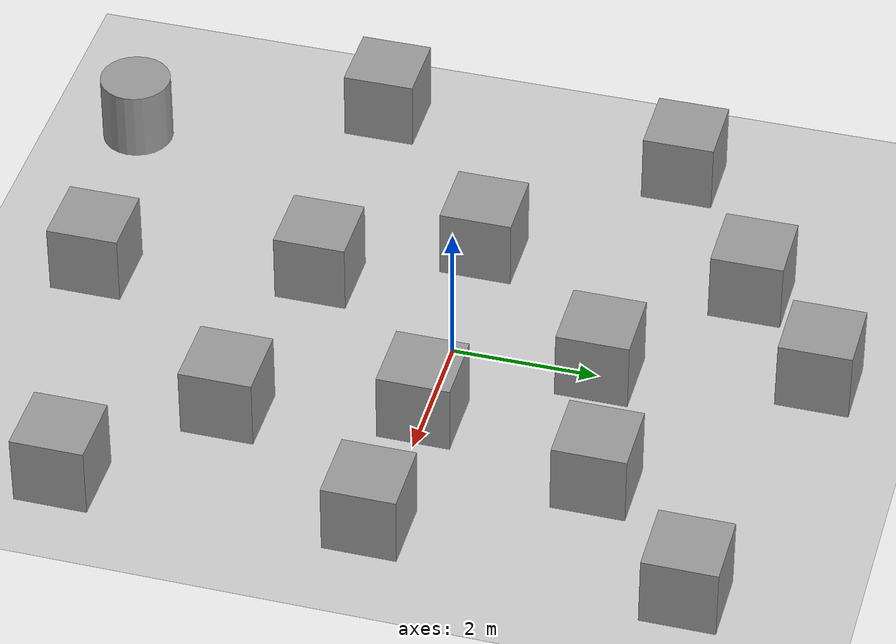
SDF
<sdf version="1.7">
 <world name="default">
  <model name="ground_plane">
   <static>1</static>
   <link name="link">
    <collision name="collision">
     <geometry><plane><normal>0 0 1</normal><size>100 100</size></plane></geometry>
     <surface><friction><ode><mu>100</mu><mu2>50</mu2></ode></friction></surface>
    </collision>
    <visual name="visual">
     <cast_shadows>0</cast_shadows>
     <geometry><plane><normal>0 0 1</normal><size>100 100</size></plane></geometry>
     <material>
      <script><uri>file://media/materials/scripts/gazebo.material</uri><name>Gazebo/Grey</name></script>
     </material>
    </visual>
   </link>
  </model>
  <light name="sun" type="directional">
   <pose>0 0 10 0 -0 0</pose>
   <diffuse>0.8 0.8 0.8 1</diffuse>
   <specular>0.2 0.2 0.2 1</specular>
   <attenuation>
    <range>1000</range>
    <constant>0.9</constant>
    <linear>0.01</linear>
    <quadratic>0.001</quadratic>
   </attenuation>
   <direction>-0.5 0.1 -0.9</direction>
   <spot><inner_angle>0</inner_angle><outer_angle>0</outer_angle><falloff>0</falloff></spot>
  </light>
  <scene><shadows>0</shadows><ambient>0.4 0.4 0.4 1</ambient><background>0.7 0.7 0.7 1</background></scene>
  <physics type="ode">
   <real_time_update_rate>1000</real_time_update_rate>
   <max_step_size>0.001</max_step_size>
   <real_time_factor>1</real_time_factor>
   <ode>
    <solver>
     <type>quick</type>
     <iters>150</iters>
     <precon_iters>0</precon_iters>
     <sor>1.4</sor>
     <use_dynamic_moi_rescaling>1</use_dynamic_moi_rescaling>
    </solver>
    <constraints>
     <cfm>1e-05</cfm>
     <erp>0.2</erp>
     <contact_max_correcting_vel>2000</contact_max_correcting_vel>
     <contact_surface_layer>0.01</contact_surface_layer>
    </constraints>
   </ode>
  </physics>
  <gravity>0 0 -9.8</gravity>
  <magnetic_field>6e-06 2.3e-05 -4.2e-05</magnetic_field>
  <atmosphere type="adiabatic"/>
  <audio><device>default</device></audio>
  <spherical_coordinates>
   <surface_model>EARTH_WGS84</surface_model>
   <latitude_deg>0</latitude_deg>
   <longitude_deg>0</longitude_deg>
   <elevation>0</elevation>
   <heading_deg>0</heading_deg>
  </spherical_coordinates>
  <model name="unit_box">
   <pose>1.428 -0.020604 0.5 0 -0 0</pose>
   <link name="link">
    <inertial>
     <mass>1</mass>
     <inertia>
      <ixx>0.166667</ixx>
      <ixy>0</ixy>
      <ixz>0</ixz>
      <iyy>0.166667</iyy>
      <iyz>0</iyz>
      <izz>0.166667</izz>
     </inertia>
    </inertial>
    <collision name="collision"><geometry><box><size>1 1 1</size></box></geometry></collision>
    <visual name="visual">
     <geometry><box><size>1 1 1</size></box></geometry>
     <material>
      <script><name>Gazebo/Grey</name><uri>file://media/materials/scripts/gazebo.material</uri></script>
     </material>
    </visual>
   </link>
  </model>
  <model name="unit_box_0">
   <pose>-0.002443 2.03713 0.5 0 -0 0</pose>
   <link name="link">
    <inertial>
     <mass>1</mass>
     <inertia>
      <ixx>0.166667</ixx>
      <ixy>0</ixy>
      <ixz>0</ixz>
      <iyy>0.166667</iyy>
      <iyz>0</iyz>
      <izz>0.166667</izz>
     </inertia>
    </inertial>
    <collision name="collision"><geometry><box><size>1 1 1</size></box></geometry></collision>
    <visual name="visual">
     <geometry><box><size>1 1 1</size></box></geometry>
     <material>
      <script><name>Gazebo/Grey</name><uri>file://media/materials/scripts/gazebo.material</uri></script>
     </material>
    </visual>
   </link>
  </model>
  <model name="unit_box_1">
   <pose>-0.962703 -2.13872 0.5 0 -0 0</pose>
   <link name="link">
    <inertial>
     <mass>1</mass>
     <inertia>
      <ixx>0.166667</ixx>
      <ixy>0</ixy>
      <ixz>0</ixz>
      <iyy>0.166667</iyy>
      <iyz>0</iyz>
      <izz>0.166667</izz>
     </inertia>
    </inertial>
    <collision name="collision"><geometry><box><size>1 1 1</size></box></geometry></collision>
    <visual name="visual">
     <geometry><box><size>1 1 1</size></box></geometry>
     <material>
      <script><name>Gazebo/Grey</name><uri>file://media/materials/scripts/gazebo.material</uri></script>
     </material>
    </visual>
   </link>
  </model>
  <model name="unit_box_2">
   <pose>-2.05306 -0.100331 0.5 0 -0 0</pose>
   <link name="link">
    <inertial>
     <mass>1</mass>
     <inertia>
      <ixx>0.166667</ixx>
      <ixy>0</ixy>
      <ixz>0</ixz>
      <iyy>0.166667</iyy>
      <iyz>0</iyz>
      <izz>0.166667</izz>
     </inertia>
    </inertial>
    <collision name="collision"><geometry><box><size>1 1 1</size></box></geometry></collision>
    <visual name="visual">
     <geometry><box><size>1 1 1</size></box></geometry>
     <material>
      <script><name>Gazebo/Grey</name><uri>file://media/materials/scripts/gazebo.material</uri></script>
     </material>
    </visual>
   </link>
  </model>
  <model name="unit_box_3">
   <pose>-2.11577 3.65759 0.5 0 -0 0</pose>
   <link name="link">
    <inertial>
     <mass>1</mass>
     <inertia>
      <ixx>0.166667</ixx>
      <ixy>0</ixy>
      <ixz>0</ixz>
      <iyy>0.166667</iyy>
      <iyz>0</iyz>
      <izz>0.166667</izz>
     </inertia>
    </inertial>
    <collision name="collision"><geometry><box><size>1 1 1</size></box></geometry></collision>
    <visual name="visual">
     <geometry><box><size>1 1 1</size></box></geometry>
     <material>
      <script><name>Gazebo/Grey</name><uri>file://media/materials/scripts/gazebo.material</uri></script>
     </material>
    </visual>
   </link>
  </model>
  <model name="unit_box_4">
   <pose>2.00541 -2.54322 0.5 0 -0 0</pose>
   <link name="link">
    <inertial>
     <mass>1</mass>
     <inertia>
      <ixx>0.166667</ixx>
      <ixy>0</ixy>
      <ixz>0</ixz>
      <iyy>0.166667</iyy>
      <iyz>0</iyz>
      <izz>0.166667</izz>
     </inertia>
    </inertial>
    <collision name="collision"><geometry><box><size>1 1 1</size></box></geometry></collision>
    <visual name="visual">
     <geometry><box><size>1 1 1</size></box></geometry>
     <material>
      <script><name>Gazebo/Grey</name><uri>file://media/materials/scripts/gazebo.material</uri></script>
     </material>
    </visual>
   </link>
  </model>
  <model name="unit_box_5">
   <pose>2.16478 2.51905 0.5 0 -0 0</pose>
   <link name="link">
    <inertial>
     <mass>1</mass>
     <inertia>
      <ixx>0.166667</ixx>
      <ixy>0</ixy>
      <ixz>0</ixz>
      <iyy>0.166667</iyy>
      <iyz>0</iyz>
      <izz>0.166667</izz>
     </inertia>
    </inertial>
    <collision name="collision"><geometry><box><size>1 1 1</size></box></geometry></collision>
    <visual name="visual">
     <geometry><box><size>1 1 1</size></box></geometry>
     <material>
      <script><name>Gazebo/Grey</name><uri>file://media/materials/scripts/gazebo.material</uri></script>
     </material>
    </visual>
   </link>
  </model>
  <model name="unit_box_6">
   <pose>-0.339502 -5.16147 0.5 0 -0 0</pose>
   <link name="link">
    <inertial>
     <mass>1</mass>
     <inertia>
      <ixx>0.166667</ixx>
      <ixy>0</ixy>
      <ixz>0</ixz>
      <iyy>0.166667</iyy>
      <iyz>0</iyz>
      <izz>0.166667</izz>
     </inertia>
    </inertial>
    <collision name="collision"><geometry><box><size>1 1 1</size></box></geometry></collision>
    <visual name="visual">
     <geometry><box><size>1 1 1</size></box></geometry>
     <material>
      <script><name>Gazebo/Grey</name><uri>file://media/materials/scripts/gazebo.material</uri></script>
     </material>
    </visual>
   </link>
  </model>
  <model name="unit_box_7">
   <pose>3.66668 -0.121773 0.5 0 -0 0</pose>
   <link name="link">
    <inertial>
     <mass>1</mass>
     <inertia>
      <ixx>0.166667</ixx>
      <ixy>0</ixy>
      <ixz>0</ixz>
      <iyy>0.166667</iyy>
      <iyz>0</iyz>
      <izz>0.166667</izz>
     </inertia>
    </inertial>
    <collision name="collision"><geometry><box><size>1 1 1</size></box></geometry></collision>
    <visual name="visual">
     <geometry><box><size>1 1 1</size></box></geometry>
     <material>
      <script><name>Gazebo/Grey</name><uri>file://media/materials/scripts/gazebo.material</uri></script>
     </material>
    </visual>
   </link>
  </model>
  <model name="unit_box_8">
   <pose>3.90075 4.10414 0.5 0 -0 0</pose>
   <link name="link">
    <inertial>
     <mass>1</mass>
     <inertia>
      <ixx>0.166667</ixx>
      <ixy>0</ixy>
      <ixz>0</ixz>
      <iyy>0.166667</iyy>
      <iyz>0</iyz>
      <izz>0.166667</izz>
     </inertia>
    </inertial>
    <collision name="collision"><geometry><box><size>1 1 1</size></box></geometry></collision>
    <visual name="visual">
     <geometry><box><size>1 1 1</size></box></geometry>
     <material>
      <script><name>Gazebo/Grey</name><uri>file://media/materials/scripts/gazebo.material</uri></script>
     </material>
    </visual>
   </link>
  </model>
  <model name="unit_box_9">
   <pose>3.82686 -4.23271 0.5 0 -0 0</pose>
   <link name="link">
    <inertial>
     <mass>1</mass>
     <inertia>
      <ixx>0.166667</ixx>
      <ixy>0</ixy>
      <ixz>0</ixz>
      <iyy>0.166667</iyy>
      <iyz>0</iyz>
      <izz>0.166667</izz>
     </inertia>
    </inertial>
    <collision name="collision"><geometry><box><size>1 1 1</size></box></geometry></collision>
    <visual name="visual">
     <geometry><box><size>1 1 1</size></box></geometry>
     <material>
      <script><name>Gazebo/Grey</name><uri>file://media/materials/scripts/gazebo.material</uri></script>
     </material>
    </visual>
   </link>
  </model>
  <model name="unit_box_10">
   <pose>-0.563515 4.90954 0.5 0 -0 0</pose>
   <link name="link">
    <inertial>
     <mass>1</mass>
     <inertia>
      <ixx>0.166667</ixx>
      <ixy>0</ixy>
      <ixz>0</ixz>
      <iyy>0.166667</iyy>
      <iyz>0</iyz>
      <izz>0.166667</izz>
     </inertia>
    </inertial>
    <collision name="collision"><geometry><box><size>1 1 1</size></box></geometry></collision>
    <visual name="visual">
     <geometry><box><size>1 1 1</size></box></geometry>
     <material>
      <script><name>Gazebo/Grey</name><uri>file://media/materials/scripts/gazebo.material</uri></script>
     </material>
    </visual>
   </link>
  </model>
  <model name="unit_box_11">
   <pose>-4.38475 2.19533 0.5 0 -0 0</pose>
   <link name="link">
    <inertial>
     <mass>1</mass>
     <inertia>
      <ixx>0.166667</ixx>
      <ixy>0</ixy>
      <ixz>0</ixz>
      <iyy>0.166667</iyy>
      <iyz>0</iyz>
      <izz>0.166667</izz>
     </inertia>
    </inertial>
    <collision name="collision"><geometry><box><size>1 1 1</size></box></geometry></collision>
    <visual name="visual">
     <geometry><box><size>1 1 1</size></box></geometry>
     <material>
      <script><name>Gazebo/Grey</name><uri>file://media/materials/scripts/gazebo.material</uri></script>
     </material>
    </visual>
   </link>
  </model>
  <model name="unit_box_12">
   <pose>-4.68034 -2.21616 0.5 0 -0 0</pose>
   <link name="link">
    <inertial>
     <mass>1</mass>
     <inertia>
      <ixx>0.166667</ixx>
      <ixy>0</ixy>
      <ixz>0</ixz>
      <iyy>0.166667</iyy>
      <iyz>0</iyz>
      <izz>0.166667</izz>
     </inertia>
    </inertial>
    <collision name="collision"><geometry><box><size>1 1 1</size></box></geometry></collision>
    <visual name="visual">
     <geometry><box><size>1 1 1</size></box></geometry>
     <material>
      <script><name>Gazebo/Grey</name><uri>file://media/materials/scripts/gazebo.material</uri></script>
     </material>
    </visual>
   </link>
  </model>
  <model name="unit_cylinder">
   <pose>-3.40113 -5.55989 0.499997 -4e-06 -4e-06 -0</pose>
   <link name="link">
    <inertial>
     <mass>1</mass>
     <inertia><ixx>0.145833</ixx><ixy>0</ixy><ixz>0</ixz><iyy>0.145833</iyy><iyz>0</iyz><izz>0.125</izz></inertia>
    </inertial>
    <collision name="collision">
     <geometry><cylinder><radius>0.5</radius><length>1</length></cylinder></geometry>
    </collision>
    <visual name="visual">
     <geometry><cylinder><radius>0.5</radius><length>1</length></cylinder></geometry>
     <material>
      <script><name>Gazebo/Grey</name><uri>file://media/materials/scripts/gazebo.material</uri></script>
     </material>
    </visual>
   </link>
  </model>
  <light name="user_point_light_0" type="point">
   <pose>0.041776 0.126961 1 0 -0 0</pose>
   <diffuse>0.5 0.5 0.5 1</diffuse>
   <specular>0.1 0.1 0.1 1</specular>
   <attenuation>
    <range>20</range>
    <constant>0.5</constant>
    <linear>0.01</linear>
    <quadratic>0.001</quadratic>
   </attenuation>
   <cast_shadows>0</cast_shadows>
   <direction>0 0 -1</direction>
   <spot><inner_angle>0</inner_angle><outer_angle>0</outer_angle><falloff>0</falloff></spot>
  </light>
 </world>
</sdf>
